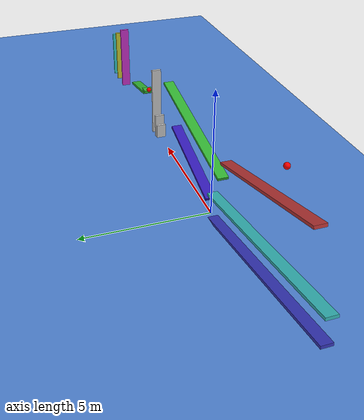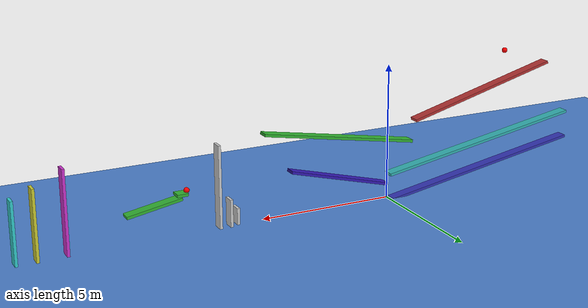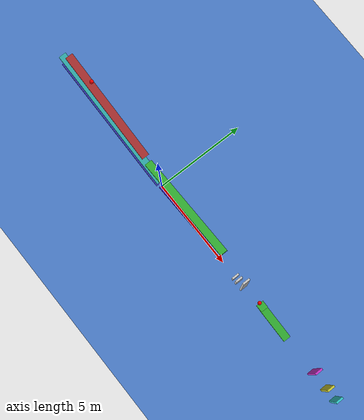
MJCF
<mujoco>
    <option gravity="0 0 -9.81"/>
    <worldbody>

        <!-- Ground -->
        <body name="ground" pos="0 0 0">
            <geom type="plane" size="25 25 0.1" rgba="0.3 0.5 0.8 1"/>
        </body>

        <!-- Inclined Planes -->
        <body name="plane1" pos="-2 0 1.8">
            <geom type="box" size="3 0.2 0.05" pos="-2 0 1.8" euler="0 15 0" rgba="0.7 0.2 0.2 1"/>
        </body>
        <body name="plane2" pos="1 0 1.3">
            <geom type="box" size="3 0.2 0.05" pos="1 0 1.3" euler="0 -10 0" rgba="0.2 0.7 0.2 1"/>
        </body>
        <body name="plane6" pos="-2 0 0.8">
            <geom type="box" size="4 0.2 0.05" pos="-2 0 0.8" euler="0 10 0" rgba="0.2 0.7 0.7 1"/>
        </body>
        <body name="plane7" pos="1 0 0.3">
            <geom type="box" size="2 0.2 0.05" pos="1 0 0.8" euler="0 -15 0" rgba="0.2 0.1 0.7 1"/>
        </body>
        <body name="plane3" pos="-2 0 0.3">
            <geom type="box" size="4 0.2 0.05" pos="-2 0 0.3" euler="0 10 0" rgba="0.2 0.2 0.7 1"/>
        </body>

        <!-- Dominoes -->
        <body name="domino1" pos="6 0 0.35">
            <geom type="box" size="0.05 0.2 0.3" euler="0 0 0" rgba="0.8 0.8 0.8 1" friction="0.6 0.1 0.1"/>
            <inertial pos="0 0 0" mass="0.1" diaginertia="0.001 0.001 0.001"/>
        </body>

        <body name="domino2" pos="6.25 0 0.5">
            <geom type="box" size="0.05 0.2 0.5" euler="0 0 0" rgba="0.8 0.8 0.8 1"/>
        </body>

        <body name="domino3" pos="6.65 0 1.5">
            <geom type="box" size="0.05 0.2 1.5" euler="0 0 0" rgba="0.8 0.8 0.8 1"/>
        </body>

        <body name="domino4" pos="12 0 1.5">
            <geom type="box" size="0.05 0.2 1.5" euler="0 0 0" rgba="0.8 0.2 0.8 1"/>
        </body>

        <body name="domino5" pos="13 0 1">
            <geom type="box" size="0.05 0.2 1.5" euler="0 0 0" rgba="0.8 0.8 0.2 1"/>
        </body>

        <body name="domino6" pos="13.7 0 0.7">
            <geom type="box" size="0.05 0.2 1.5" euler="0 0 0" rgba="0.2 0.8 0.8 1"/>
        </body>

        <body name="plane4" pos="7.50 0 1.5">
            <geom type="box" size="0.2 0.2 0.05" pos="0.5 0 -0.05" euler="0 0 0" rgba="0.2 0.7 0.2 1"/>
        </body>
        <body name="plane5" pos="8.5 0 1.2">
            <geom type="box" size="1 0.2 0.05" pos="0.5 0 -0.05" euler="0 10 0" rgba="0.2 0.7 0.2 1"/>
        </body>

        <!-- Marble -->
        <body name="marble" pos="-5 0 5">
            <geom type="sphere" size="0.1" rgba="1 0 0 1"/>
            <inertial pos="0 0 0" mass="0.1" diaginertia="0.0001 0.0001 0.0001"/>
            <joint type="free" stiffness="0" damping="0" frictionloss="0" armature="0"/>
        </body>

        <!-- Activated Marble -->
        <body name="activated_marble" pos="7.80 0 1.55">
            <geom type="sphere" size="0.1" rgba="1 0 0 1"/>
            <inertial pos="0 0 0" mass="0.1" diaginertia="0.0001 0.0001 0.0001"/>
        </body>
    </worldbody>

</mujoco>
